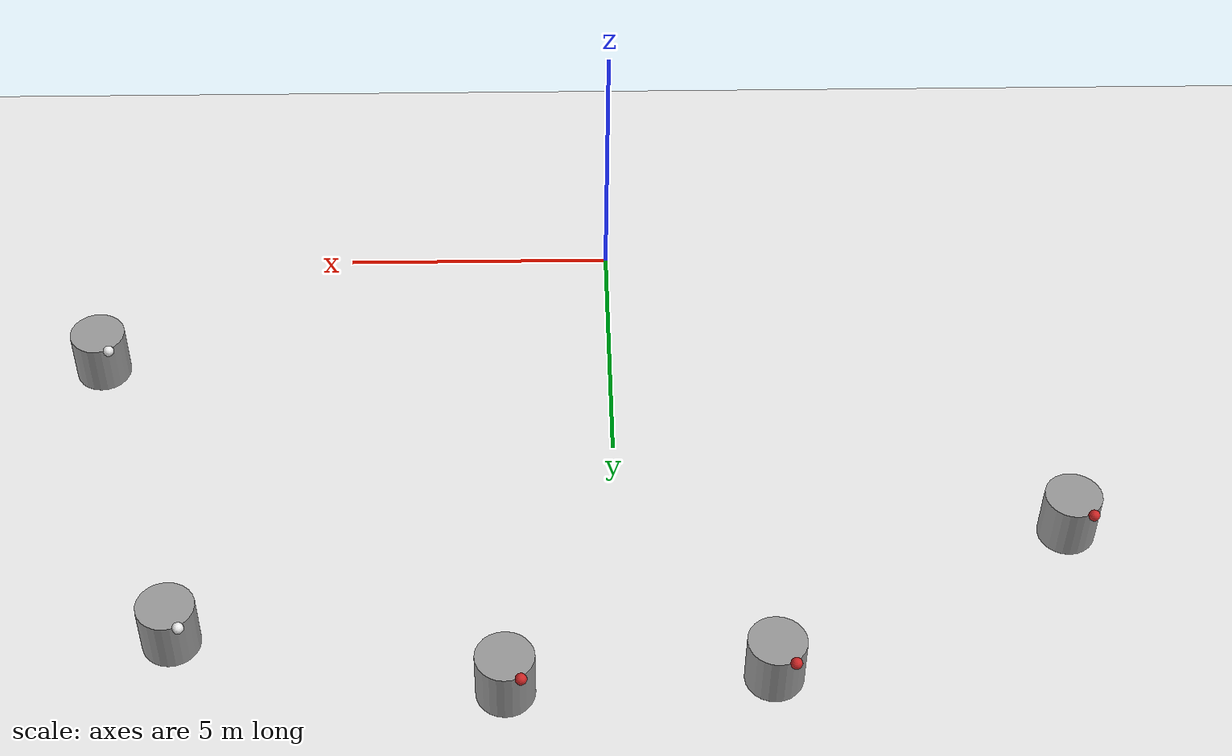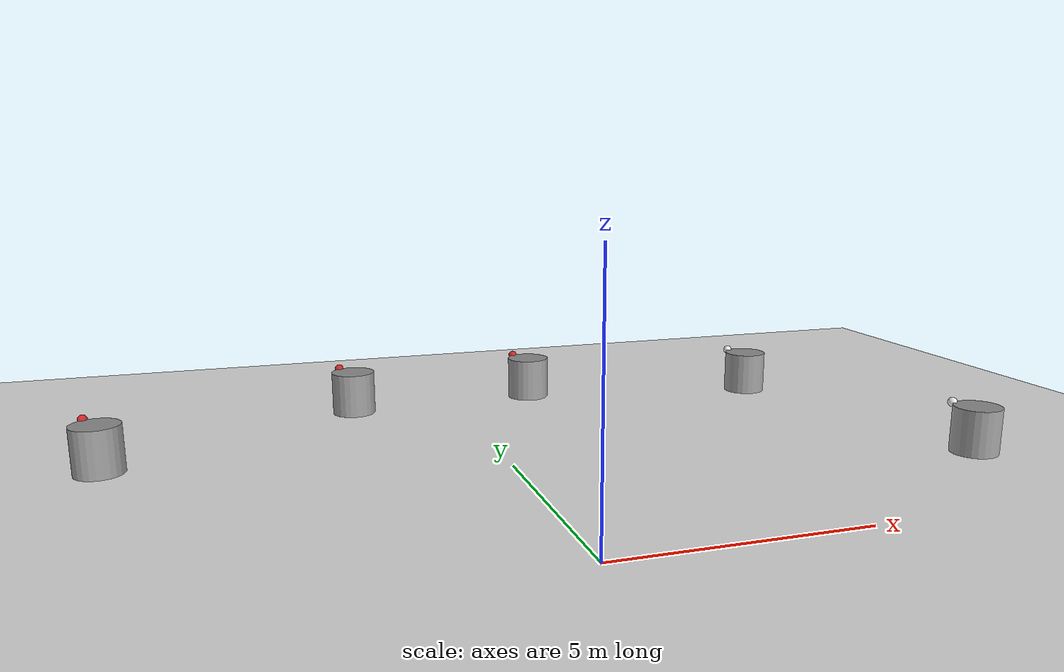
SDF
<sdf version="1.7">
 <world name="default">
  <model name="ground_plane">
   <static>1</static>
   <link name="link">
    <collision name="collision">
     <geometry><plane><normal>0 0 1</normal><size>100 100</size></plane></geometry>
     <surface>
      <contact><collide_bitmask>65535</collide_bitmask></contact>
      <friction><ode><mu>100</mu><mu2>50</mu2></ode></friction>
     </surface>
    </collision>
    <visual name="visual">
     <cast_shadows>0</cast_shadows>
     <geometry><plane><normal>0 0 1</normal><size>100 100</size></plane></geometry>
     <material>
      <script><uri>file://media/materials/scripts/gazebo.material</uri><name>Gazebo/White</name></script>
     </material>
    </visual>
   </link>
  </model>
  <model name="model5.1_1">
   <link name="link_1">
    <inertial>
     <mass>1</mass>
     <inertia><ixx>0.145833</ixx><ixy>0</ixy><ixz>0</ixz><iyy>0.145833</iyy><iyz>0</iyz><izz>0.125</izz></inertia>
    </inertial>
    <pose>0.135672 -0.23052 0 0 -0 0</pose>
    <visual name="visual">
     <geometry><cylinder><radius>0.5</radius><length>1</length></cylinder></geometry>
     <material>
      <lighting>1</lighting>
      <script><uri>file://media/materials/scripts/gazebo.material</uri><name>Gazebo/Grey</name></script>
      <shader type="pixel"/>
      <emissive>0 0 0 1</emissive>
     </material>
    </visual>
    <collision name="collision">
     <geometry><cylinder><radius>0.5</radius><length>1</length></cylinder></geometry>
     <surface>
      <friction>
       <ode><mu>1</mu><mu2>1</mu2><fdir1>0 0 0</fdir1><slip1>0</slip1><slip2>0</slip2></ode>
       <torsional>
        <coefficient>1</coefficient>
        <patch_radius>0</patch_radius>
        <surface_radius>0</surface_radius>
        <use_patch_radius>1</use_patch_radius>
        <ode><slip>0</slip></ode>
       </torsional>
      </friction>
      <bounce><restitution_coefficient>0</restitution_coefficient><threshold>1e+06</threshold></bounce>
      <contact>
       <collide_without_contact>0</collide_without_contact>
       <collide_without_contact_bitmask>1</collide_without_contact_bitmask>
       <collide_bitmask>1</collide_bitmask>
       <ode>
        <soft_cfm>0</soft_cfm>
        <soft_erp>0.2</soft_erp>
        <kp>1e+13</kp>
        <kd>1</kd>
        <max_vel>0.01</max_vel>
        <min_depth>0</min_depth>
       </ode>
       <bullet>
        <split_impulse>1</split_impulse>
        <split_impulse_penetration_threshold>-0.01</split_impulse_penetration_threshold>
        <soft_cfm>0</soft_cfm>
        <soft_erp>0.2</soft_erp>
        <kp>1e+13</kp>
        <kd>1</kd>
       </bullet>
      </contact>
     </surface>
    </collision>
   </link>
   <link name="link_2">
    <inertial>
     <mass>1</mass>
     <inertia><ixx>0.1</ixx><ixy>0</ixy><ixz>0</ixz><iyy>0.1</iyy><iyz>0</iyz><izz>0.1</izz></inertia>
    </inertial>
    <pose>-0.13567 0.230521 0.5 0 -0 0</pose>
    <visual name="visual">
     <geometry><sphere><radius>0.1</radius></sphere></geometry>
     <material>
      <lighting>1</lighting>
      <script><uri>file://media/materials/scripts/gazebo.material</uri><name>Gazebo/White</name></script>
      <shader type="pixel"><normal_map>__default__</normal_map></shader>
      <ambient>0.3 0.3 0.3 1</ambient>
      <diffuse>0.7 0.7 0.7 1</diffuse>
      <specular>0.01 0.01 0.01 1</specular>
      <emissive>0 0 0 1</emissive>
     </material>
    </visual>
    <collision name="collision">
     <geometry><sphere><radius>0.1</radius></sphere></geometry>
     <surface>
      <friction>
       <ode><mu>1</mu><mu2>1</mu2><fdir1>0 0 0</fdir1><slip1>0</slip1><slip2>0</slip2></ode>
       <torsional>
        <coefficient>1</coefficient>
        <patch_radius>0</patch_radius>
        <surface_radius>0</surface_radius>
        <use_patch_radius>1</use_patch_radius>
        <ode><slip>0</slip></ode>
       </torsional>
      </friction>
      <bounce><restitution_coefficient>0</restitution_coefficient><threshold>1e+06</threshold></bounce>
      <contact>
       <collide_without_contact>0</collide_without_contact>
       <collide_without_contact_bitmask>1</collide_without_contact_bitmask>
       <collide_bitmask>1</collide_bitmask>
       <ode>
        <soft_cfm>0</soft_cfm>
        <soft_erp>0.2</soft_erp>
        <kp>1e+13</kp>
        <kd>1</kd>
        <max_vel>0.01</max_vel>
        <min_depth>0</min_depth>
       </ode>
       <bullet>
        <split_impulse>1</split_impulse>
        <split_impulse_penetration_threshold>-0.01</split_impulse_penetration_threshold>
        <soft_cfm>0</soft_cfm>
        <soft_erp>0.2</soft_erp>
        <kp>1e+13</kp>
        <kd>1</kd>
       </bullet>
      </contact>
     </surface>
    </collision>
   </link>
   <joint name="link_1_JOINT_0" type="revolute">
    <parent>link_1</parent>
    <child>link_2</child>
    <pose>0 0 0 0 0 -0.03</pose>
    <axis>
     <xyz>0 0 2</xyz>
     <limit>
      <lower>-1.79769e+308</lower>
      <upper>1.79769e+308</upper>
      <effort>-1</effort>
      <velocity>-1</velocity>
     </limit>
     <dynamics>
      <spring_reference>0</spring_reference>
      <spring_stiffness>0</spring_stiffness>
      <damping>0</damping>
     </dynamics>
    </axis>
    <physics>
     <ode><limit><cfm>0</cfm><erp>0.2</erp></limit><suspension><cfm>0</cfm><erp>0.2</erp></suspension></ode>
    </physics>
   </joint>
   <static>0</static>
   <pose>9.39128 3.13635 0.5 0 -0 -0.001609</pose>
  </model>
  <model name="model5.1_2">
   <link name="link_1">
    <inertial>
     <mass>1</mass>
     <inertia><ixx>0.145833</ixx><ixy>0</ixy><ixz>0</ixz><iyy>0.145833</iyy><iyz>0</iyz><izz>0.125</izz></inertia>
    </inertial>
    <pose>0.135672 -0.23052 0 0 -0 0</pose>
    <visual name="visual">
     <geometry><cylinder><radius>0.5</radius><length>1</length></cylinder></geometry>
     <material>
      <lighting>1</lighting>
      <script><uri>file://media/materials/scripts/gazebo.material</uri><name>Gazebo/Grey</name></script>
      <shader type="pixel"/>
      <emissive>0 0 0 1</emissive>
     </material>
    </visual>
    <collision name="collision">
     <geometry><cylinder><radius>0.5</radius><length>1</length></cylinder></geometry>
     <surface>
      <friction>
       <ode><mu>1</mu><mu2>1</mu2><fdir1>0 0 0</fdir1><slip1>0</slip1><slip2>0</slip2></ode>
       <torsional>
        <coefficient>1</coefficient>
        <patch_radius>0</patch_radius>
        <surface_radius>0</surface_radius>
        <use_patch_radius>1</use_patch_radius>
        <ode><slip>0</slip></ode>
       </torsional>
      </friction>
      <bounce><restitution_coefficient>0</restitution_coefficient><threshold>1e+06</threshold></bounce>
      <contact>
       <collide_without_contact>0</collide_without_contact>
       <collide_without_contact_bitmask>1</collide_without_contact_bitmask>
       <collide_bitmask>1</collide_bitmask>
       <ode>
        <soft_cfm>0</soft_cfm>
        <soft_erp>0.2</soft_erp>
        <kp>1e+13</kp>
        <kd>1</kd>
        <max_vel>0.01</max_vel>
        <min_depth>0</min_depth>
       </ode>
       <bullet>
        <split_impulse>1</split_impulse>
        <split_impulse_penetration_threshold>-0.01</split_impulse_penetration_threshold>
        <soft_cfm>0</soft_cfm>
        <soft_erp>0.2</soft_erp>
        <kp>1e+13</kp>
        <kd>1</kd>
       </bullet>
      </contact>
     </surface>
    </collision>
   </link>
   <link name="link_2">
    <inertial>
     <mass>1</mass>
     <inertia><ixx>0.1</ixx><ixy>0</ixy><ixz>0</ixz><iyy>0.1</iyy><iyz>0</iyz><izz>0.1</izz></inertia>
    </inertial>
    <pose>-0.13567 0.230521 0.5 0 -0 0</pose>
    <visual name="visual">
     <geometry><sphere><radius>0.1</radius></sphere></geometry>
     <material>
      <lighting>1</lighting>
      <script><uri>file://media/materials/scripts/gazebo.material</uri><name>Gazebo/White</name></script>
      <shader type="pixel"><normal_map>__default__</normal_map></shader>
      <ambient>0.3 0.3 0.3 1</ambient>
      <diffuse>0.7 0.7 0.7 1</diffuse>
      <specular>0.01 0.01 0.01 1</specular>
      <emissive>0 0 0 1</emissive>
     </material>
    </visual>
    <collision name="collision">
     <geometry><sphere><radius>0.1</radius></sphere></geometry>
     <surface>
      <friction>
       <ode><mu>1</mu><mu2>1</mu2><fdir1>0 0 0</fdir1><slip1>0</slip1><slip2>0</slip2></ode>
       <torsional>
        <coefficient>1</coefficient>
        <patch_radius>0</patch_radius>
        <surface_radius>0</surface_radius>
        <use_patch_radius>1</use_patch_radius>
        <ode><slip>0</slip></ode>
       </torsional>
      </friction>
      <bounce><restitution_coefficient>0</restitution_coefficient><threshold>1e+06</threshold></bounce>
      <contact>
       <collide_without_contact>0</collide_without_contact>
       <collide_without_contact_bitmask>1</collide_without_contact_bitmask>
       <collide_bitmask>1</collide_bitmask>
       <ode>
        <soft_cfm>0</soft_cfm>
        <soft_erp>0.2</soft_erp>
        <kp>1e+13</kp>
        <kd>1</kd>
        <max_vel>0.01</max_vel>
        <min_depth>0</min_depth>
       </ode>
       <bullet>
        <split_impulse>1</split_impulse>
        <split_impulse_penetration_threshold>-0.01</split_impulse_penetration_threshold>
        <soft_cfm>0</soft_cfm>
        <soft_erp>0.2</soft_erp>
        <kp>1e+13</kp>
        <kd>1</kd>
       </bullet>
      </contact>
     </surface>
    </collision>
   </link>
   <joint name="link_1_JOINT_0" type="revolute">
    <parent>link_1</parent>
    <child>link_2</child>
    <pose>0 0 0 0 0 -0.03</pose>
    <axis>
     <xyz>0 0 2</xyz>
     <limit>
      <lower>-1.79769e+308</lower>
      <upper>1.79769e+308</upper>
      <effort>-1</effort>
      <velocity>-1</velocity>
     </limit>
     <dynamics>
      <spring_reference>0</spring_reference>
      <spring_stiffness>0</spring_stiffness>
      <damping>0</damping>
     </dynamics>
    </axis>
    <physics>
     <ode><limit><cfm>0</cfm><erp>0.2</erp></limit><suspension><cfm>0</cfm><erp>0.2</erp></suspension></ode>
    </physics>
   </joint>
   <static>0</static>
   <pose>7.43586 9.54138 0.5 0 0 -0.001586</pose>
  </model>
  <model name="model5.1_3">
   <link name="link_1">
    <inertial>
     <mass>1</mass>
     <inertia><ixx>0.145833</ixx><ixy>0</ixy><ixz>0</ixz><iyy>0.145833</iyy><iyz>0</iyz><izz>0.125</izz></inertia>
    </inertial>
    <pose>0.135672 -0.23052 0 0 -0 0</pose>
    <visual name="visual">
     <geometry><cylinder><radius>0.5</radius><length>1</length></cylinder></geometry>
     <material>
      <lighting>1</lighting>
      <script><uri>file://media/materials/scripts/gazebo.material</uri><name>Gazebo/Grey</name></script>
      <shader type="pixel"/>
      <emissive>0 0 0 1</emissive>
     </material>
    </visual>
    <collision name="collision">
     <geometry><cylinder><radius>0.5</radius><length>1</length></cylinder></geometry>
     <surface>
      <friction>
       <ode><mu>1</mu><mu2>1</mu2><fdir1>0 0 0</fdir1><slip1>0</slip1><slip2>0</slip2></ode>
       <torsional>
        <coefficient>1</coefficient>
        <patch_radius>0</patch_radius>
        <surface_radius>0</surface_radius>
        <use_patch_radius>1</use_patch_radius>
        <ode><slip>0</slip></ode>
       </torsional>
      </friction>
      <bounce><restitution_coefficient>0</restitution_coefficient><threshold>1e+06</threshold></bounce>
      <contact>
       <collide_without_contact>0</collide_without_contact>
       <collide_without_contact_bitmask>1</collide_without_contact_bitmask>
       <collide_bitmask>1</collide_bitmask>
       <ode>
        <soft_cfm>0</soft_cfm>
        <soft_erp>0.2</soft_erp>
        <kp>1e+13</kp>
        <kd>1</kd>
        <max_vel>0.01</max_vel>
        <min_depth>0</min_depth>
       </ode>
       <bullet>
        <split_impulse>1</split_impulse>
        <split_impulse_penetration_threshold>-0.01</split_impulse_penetration_threshold>
        <soft_cfm>0</soft_cfm>
        <soft_erp>0.2</soft_erp>
        <kp>1e+13</kp>
        <kd>1</kd>
       </bullet>
      </contact>
     </surface>
    </collision>
   </link>
   <link name="link_2">
    <inertial>
     <mass>1</mass>
     <inertia><ixx>0.1</ixx><ixy>0</ixy><ixz>0</ixz><iyy>0.1</iyy><iyz>0</iyz><izz>0.1</izz></inertia>
    </inertial>
    <pose>-0.13567 0.230521 0.5 0 -0 0</pose>
    <visual name="visual">
     <geometry><sphere><radius>0.1</radius></sphere></geometry>
     <material>
      <lighting>1</lighting>
      <script><uri>file://media/materials/scripts/gazebo.material</uri><name>Gazebo/Red</name></script>
      <shader type="pixel"><normal_map>__default__</normal_map></shader>
      <ambient>0.3 0.3 0.3 1</ambient>
      <diffuse>0.7 0.7 0.7 1</diffuse>
      <specular>0.01 0.01 0.01 1</specular>
      <emissive>0 0 0 1</emissive>
     </material>
    </visual>
    <collision name="collision">
     <geometry><sphere><radius>0.1</radius></sphere></geometry>
     <surface>
      <friction>
       <ode><mu>1</mu><mu2>1</mu2><fdir1>0 0 0</fdir1><slip1>0</slip1><slip2>0</slip2></ode>
       <torsional>
        <coefficient>1</coefficient>
        <patch_radius>0</patch_radius>
        <surface_radius>0</surface_radius>
        <use_patch_radius>1</use_patch_radius>
        <ode><slip>0</slip></ode>
       </torsional>
      </friction>
      <bounce><restitution_coefficient>0</restitution_coefficient><threshold>1e+06</threshold></bounce>
      <contact>
       <collide_without_contact>0</collide_without_contact>
       <collide_without_contact_bitmask>1</collide_without_contact_bitmask>
       <collide_bitmask>1</collide_bitmask>
       <ode>
        <soft_cfm>0</soft_cfm>
        <soft_erp>0.2</soft_erp>
        <kp>1e+13</kp>
        <kd>1</kd>
        <max_vel>0.01</max_vel>
        <min_depth>0</min_depth>
       </ode>
       <bullet>
        <split_impulse>1</split_impulse>
        <split_impulse_penetration_threshold>-0.01</split_impulse_penetration_threshold>
        <soft_cfm>0</soft_cfm>
        <soft_erp>0.2</soft_erp>
        <kp>1e+13</kp>
        <kd>1</kd>
       </bullet>
      </contact>
     </surface>
    </collision>
   </link>
   <joint name="link_1_JOINT_0" type="revolute">
    <parent>link_1</parent>
    <child>link_2</child>
    <pose>0 0 0 0 0 -0.03</pose>
    <axis>
     <xyz>0 0 2</xyz>
     <limit>
      <lower>-1.79769e+308</lower>
      <upper>1.79769e+308</upper>
      <effort>-1</effort>
      <velocity>-1</velocity>
     </limit>
     <dynamics>
      <spring_reference>0</spring_reference>
      <spring_stiffness>0</spring_stiffness>
      <damping>0</damping>
     </dynamics>
    </axis>
    <physics>
     <ode><limit><cfm>0</cfm><erp>0.2</erp></limit><suspension><cfm>0</cfm><erp>0.2</erp></suspension></ode>
    </physics>
   </joint>
   <static>0</static>
   <pose>1.79771 10.6479 0.5 0 0 -0.00156</pose>
  </model>
  <model name="model5.1_4">
   <link name="link_1">
    <inertial>
     <mass>1</mass>
     <inertia><ixx>0.145833</ixx><ixy>0</ixy><ixz>0</ixz><iyy>0.145833</iyy><iyz>0</iyz><izz>0.125</izz></inertia>
    </inertial>
    <pose>0.135672 -0.23052 0 0 -0 0</pose>
    <visual name="visual">
     <geometry><cylinder><radius>0.5</radius><length>1</length></cylinder></geometry>
     <material>
      <lighting>1</lighting>
      <script><uri>file://media/materials/scripts/gazebo.material</uri><name>Gazebo/Grey</name></script>
      <shader type="pixel"/>
      <emissive>0 0 0 1</emissive>
     </material>
    </visual>
    <collision name="collision">
     <geometry><cylinder><radius>0.5</radius><length>1</length></cylinder></geometry>
     <surface>
      <friction>
       <ode><mu>1</mu><mu2>1</mu2><fdir1>0 0 0</fdir1><slip1>0</slip1><slip2>0</slip2></ode>
       <torsional>
        <coefficient>1</coefficient>
        <patch_radius>0</patch_radius>
        <surface_radius>0</surface_radius>
        <use_patch_radius>1</use_patch_radius>
        <ode><slip>0</slip></ode>
       </torsional>
      </friction>
      <bounce><restitution_coefficient>0</restitution_coefficient><threshold>1e+06</threshold></bounce>
      <contact>
       <collide_without_contact>0</collide_without_contact>
       <collide_without_contact_bitmask>1</collide_without_contact_bitmask>
       <collide_bitmask>1</collide_bitmask>
       <ode>
        <soft_cfm>0</soft_cfm>
        <soft_erp>0.2</soft_erp>
        <kp>1e+13</kp>
        <kd>1</kd>
        <max_vel>0.01</max_vel>
        <min_depth>0</min_depth>
       </ode>
       <bullet>
        <split_impulse>1</split_impulse>
        <split_impulse_penetration_threshold>-0.01</split_impulse_penetration_threshold>
        <soft_cfm>0</soft_cfm>
        <soft_erp>0.2</soft_erp>
        <kp>1e+13</kp>
        <kd>1</kd>
       </bullet>
      </contact>
     </surface>
    </collision>
   </link>
   <link name="link_2">
    <inertial>
     <mass>1</mass>
     <inertia><ixx>0.1</ixx><ixy>0</ixy><ixz>0</ixz><iyy>0.1</iyy><iyz>0</iyz><izz>0.1</izz></inertia>
    </inertial>
    <pose>-0.13567 0.230521 0.5 0 -0 0</pose>
    <visual name="visual">
     <geometry><sphere><radius>0.1</radius></sphere></geometry>
     <material>
      <lighting>1</lighting>
      <script><uri>file://media/materials/scripts/gazebo.material</uri><name>Gazebo/Red</name></script>
      <shader type="pixel"><normal_map>__default__</normal_map></shader>
      <ambient>0.3 0.3 0.3 1</ambient>
      <diffuse>0.7 0.7 0.7 1</diffuse>
      <specular>0.01 0.01 0.01 1</specular>
      <emissive>0 0 0 1</emissive>
     </material>
    </visual>
    <collision name="collision">
     <geometry><sphere><radius>0.1</radius></sphere></geometry>
     <surface>
      <friction>
       <ode><mu>1</mu><mu2>1</mu2><fdir1>0 0 0</fdir1><slip1>0</slip1><slip2>0</slip2></ode>
       <torsional>
        <coefficient>1</coefficient>
        <patch_radius>0</patch_radius>
        <surface_radius>0</surface_radius>
        <use_patch_radius>1</use_patch_radius>
        <ode><slip>0</slip></ode>
       </torsional>
      </friction>
      <bounce><restitution_coefficient>0</restitution_coefficient><threshold>1e+06</threshold></bounce>
      <contact>
       <collide_without_contact>0</collide_without_contact>
       <collide_without_contact_bitmask>1</collide_without_contact_bitmask>
       <collide_bitmask>1</collide_bitmask>
       <ode>
        <soft_cfm>0</soft_cfm>
        <soft_erp>0.2</soft_erp>
        <kp>1e+13</kp>
        <kd>1</kd>
        <max_vel>0.01</max_vel>
        <min_depth>0</min_depth>
       </ode>
       <bullet>
        <split_impulse>1</split_impulse>
        <split_impulse_penetration_threshold>-0.01</split_impulse_penetration_threshold>
        <soft_cfm>0</soft_cfm>
        <soft_erp>0.2</soft_erp>
        <kp>1e+13</kp>
        <kd>1</kd>
       </bullet>
      </contact>
     </surface>
    </collision>
   </link>
   <joint name="link_1_JOINT_0" type="revolute">
    <parent>link_1</parent>
    <child>link_2</child>
    <pose>0 0 0 0 0 -0.03</pose>
    <axis>
     <xyz>0 0 2</xyz>
     <limit>
      <lower>-1.79769e+308</lower>
      <upper>1.79769e+308</upper>
      <effort>-1</effort>
      <velocity>-1</velocity>
     </limit>
     <dynamics>
      <spring_reference>0</spring_reference>
      <spring_stiffness>0</spring_stiffness>
      <damping>0</damping>
     </dynamics>
    </axis>
    <physics>
     <ode><limit><cfm>0</cfm><erp>0.2</erp></limit><suspension><cfm>0</cfm><erp>0.2</erp></suspension></ode>
    </physics>
   </joint>
   <static>0</static>
   <pose>-2.67078 10.3989 0.499997 1e-06 -1e-06 -0.001534</pose>
  </model>
  <model name="model5.1_5">
   <link name="link_1">
    <inertial>
     <mass>1</mass>
     <inertia><ixx>0.145833</ixx><ixy>0</ixy><ixz>0</ixz><iyy>0.145833</iyy><iyz>0</iyz><izz>0.125</izz></inertia>
    </inertial>
    <pose>0.135672 -0.23052 0 0 -0 0</pose>
    <visual name="visual">
     <geometry><cylinder><radius>0.5</radius><length>1</length></cylinder></geometry>
     <material>
      <lighting>1</lighting>
      <script><uri>file://media/materials/scripts/gazebo.material</uri><name>Gazebo/Grey</name></script>
      <shader type="pixel"/>
      <emissive>0 0 0 1</emissive>
     </material>
    </visual>
    <collision name="collision">
     <geometry><cylinder><radius>0.5</radius><length>1</length></cylinder></geometry>
     <surface>
      <friction>
       <ode><mu>1</mu><mu2>1</mu2><fdir1>0 0 0</fdir1><slip1>0</slip1><slip2>0</slip2></ode>
       <torsional>
        <coefficient>1</coefficient>
        <patch_radius>0</patch_radius>
        <surface_radius>0</surface_radius>
        <use_patch_radius>1</use_patch_radius>
        <ode><slip>0</slip></ode>
       </torsional>
      </friction>
      <bounce><restitution_coefficient>0</restitution_coefficient><threshold>1e+06</threshold></bounce>
      <contact>
       <collide_without_contact>0</collide_without_contact>
       <collide_without_contact_bitmask>1</collide_without_contact_bitmask>
       <collide_bitmask>1</collide_bitmask>
       <ode>
        <soft_cfm>0</soft_cfm>
        <soft_erp>0.2</soft_erp>
        <kp>1e+13</kp>
        <kd>1</kd>
        <max_vel>0.01</max_vel>
        <min_depth>0</min_depth>
       </ode>
       <bullet>
        <split_impulse>1</split_impulse>
        <split_impulse_penetration_threshold>-0.01</split_impulse_penetration_threshold>
        <soft_cfm>0</soft_cfm>
        <soft_erp>0.2</soft_erp>
        <kp>1e+13</kp>
        <kd>1</kd>
       </bullet>
      </contact>
     </surface>
    </collision>
   </link>
   <link name="link_2">
    <inertial>
     <mass>1</mass>
     <inertia><ixx>0.1</ixx><ixy>0</ixy><ixz>0</ixz><iyy>0.1</iyy><iyz>0</iyz><izz>0.1</izz></inertia>
    </inertial>
    <pose>-0.13567 0.230521 0.5 0 -0 0</pose>
    <visual name="visual">
     <geometry><sphere><radius>0.1</radius></sphere></geometry>
     <material>
      <lighting>1</lighting>
      <script><uri>file://media/materials/scripts/gazebo.material</uri><name>Gazebo/Red</name></script>
      <shader type="pixel"><normal_map>__default__</normal_map></shader>
      <ambient>0.3 0.3 0.3 1</ambient>
      <diffuse>0.7 0.7 0.7 1</diffuse>
      <specular>0.01 0.01 0.01 1</specular>
      <emissive>0 0 0 1</emissive>
     </material>
    </visual>
    <collision name="collision">
     <geometry><sphere><radius>0.1</radius></sphere></geometry>
     <surface>
      <friction>
       <ode><mu>1</mu><mu2>1</mu2><fdir1>0 0 0</fdir1><slip1>0</slip1><slip2>0</slip2></ode>
       <torsional>
        <coefficient>1</coefficient>
        <patch_radius>0</patch_radius>
        <surface_radius>0</surface_radius>
        <use_patch_radius>1</use_patch_radius>
        <ode><slip>0</slip></ode>
       </torsional>
      </friction>
      <bounce><restitution_coefficient>0</restitution_coefficient><threshold>1e+06</threshold></bounce>
      <contact>
       <collide_without_contact>0</collide_without_contact>
       <collide_without_contact_bitmask>1</collide_without_contact_bitmask>
       <collide_bitmask>1</collide_bitmask>
       <ode>
        <soft_cfm>0</soft_cfm>
        <soft_erp>0.2</soft_erp>
        <kp>1e+13</kp>
        <kd>1</kd>
        <max_vel>0.01</max_vel>
        <min_depth>0</min_depth>
       </ode>
       <bullet>
        <split_impulse>1</split_impulse>
        <split_impulse_penetration_threshold>-0.01</split_impulse_penetration_threshold>
        <soft_cfm>0</soft_cfm>
        <soft_erp>0.2</soft_erp>
        <kp>1e+13</kp>
        <kd>1</kd>
       </bullet>
      </contact>
     </surface>
    </collision>
   </link>
   <joint name="link_1_JOINT_0" type="revolute">
    <parent>link_1</parent>
    <child>link_2</child>
    <pose>0 0 0 0 0 -0.03</pose>
    <axis>
     <xyz>0 0 2</xyz>
     <limit>
      <lower>-1.79769e+308</lower>
      <upper>1.79769e+308</upper>
      <effort>-1</effort>
      <velocity>-1</velocity>
     </limit>
     <dynamics>
      <spring_reference>0</spring_reference>
      <spring_stiffness>0</spring_stiffness>
      <damping>0</damping>
     </dynamics>
    </axis>
    <physics>
     <ode><limit><cfm>0</cfm><erp>0.2</erp></limit><suspension><cfm>0</cfm><erp>0.2</erp></suspension></ode>
    </physics>
   </joint>
   <static>0</static>
   <pose>-8.04668 7.34088 0.499991 0 -0 -0.001508</pose>
  </model>
 </world>
</sdf>
